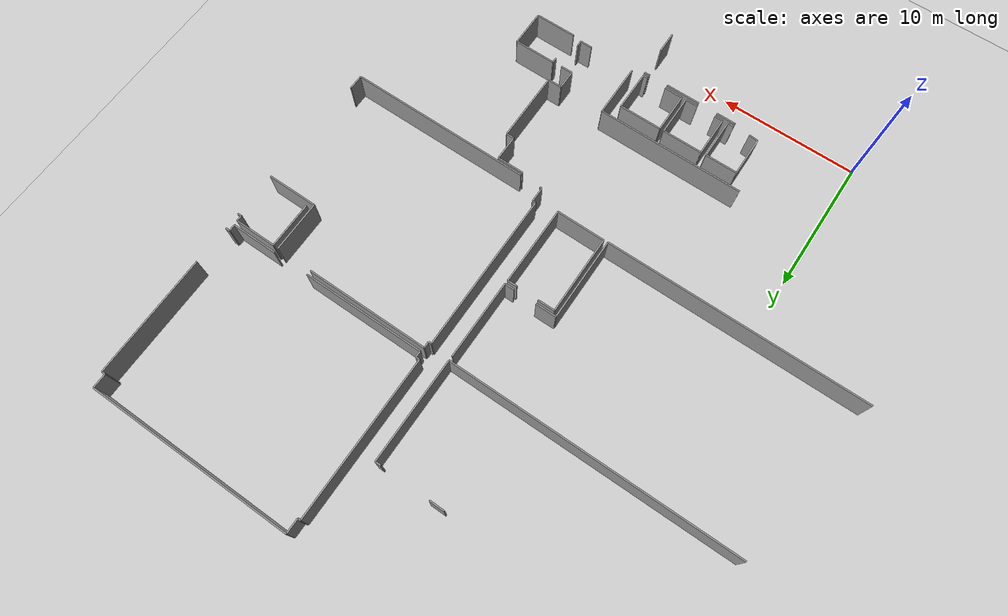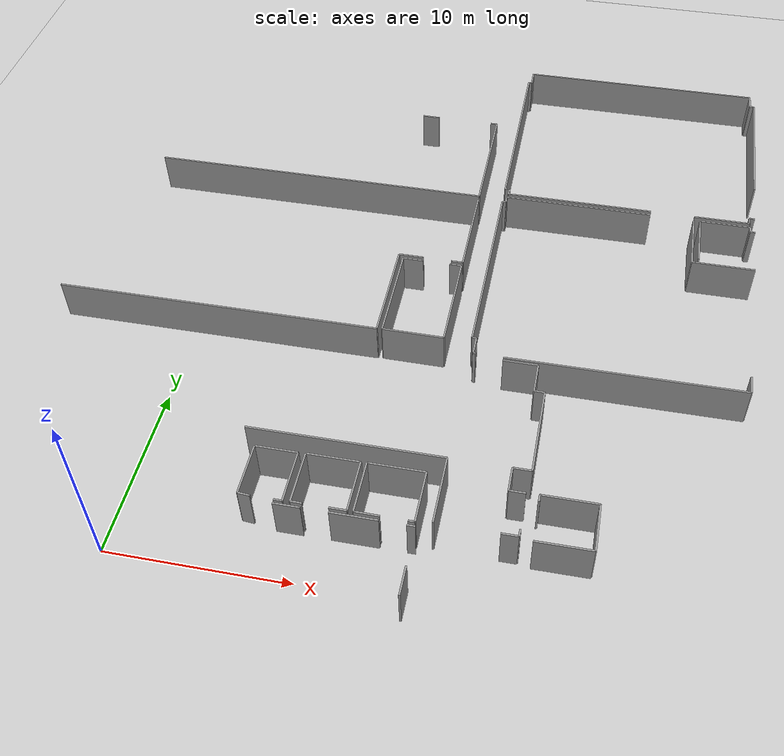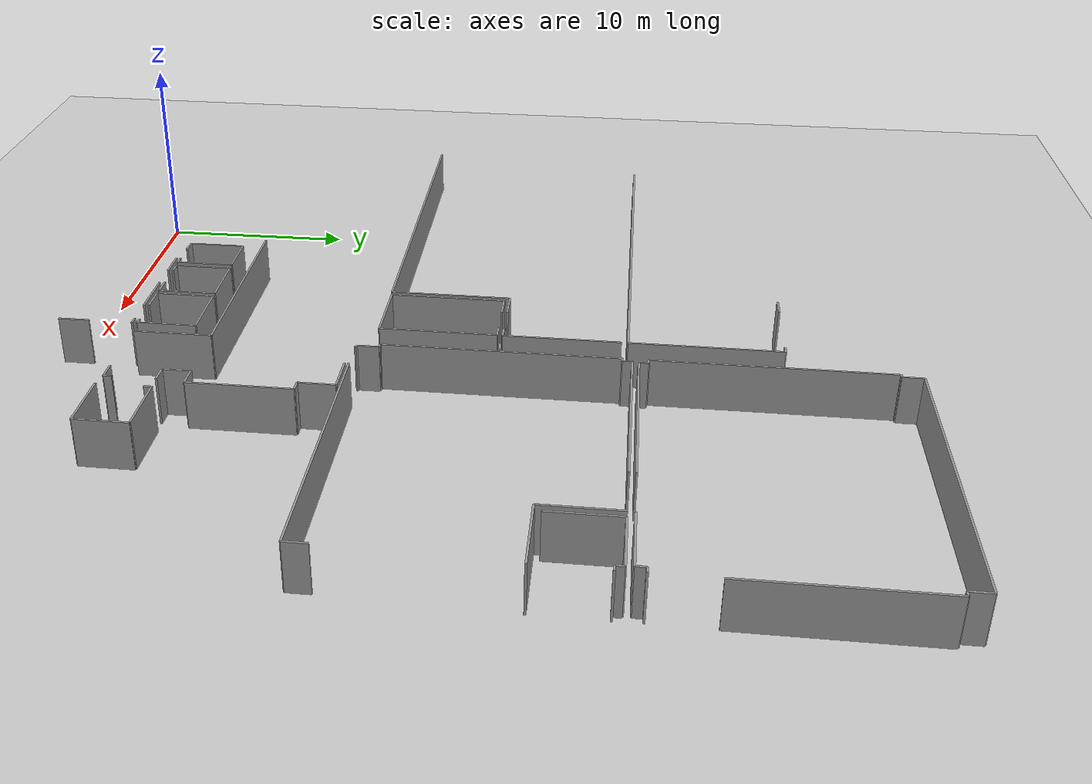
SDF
<sdf version="1.6">
 <world name="default">
  <model name="ground_plane">
   <static>1</static>
   <link name="link">
    <collision name="collision">
     <geometry><plane><normal>0 0 1</normal><size>100 100</size></plane></geometry>
     <surface><friction><ode><mu>100</mu><mu2>50</mu2></ode></friction></surface>
    </collision>
    <visual name="visual">
     <cast_shadows>0</cast_shadows>
     <geometry><plane><normal>0 0 1</normal><size>100 100</size></plane></geometry>
     <material>
      <script><uri>file://media/materials/scripts/gazebo.material</uri><name>Gazebo/Grey</name></script>
     </material>
    </visual>
   </link>
  </model>
  <model name="0510035740_A_40_1_103">
   <static>1</static>
   <link name="Wall_208">
    <collision name="Wall_208_Collision">
     <geometry><box><size>1.09718723628 0.1 2.5</size></box></geometry>
     <pose>0.548593618142 0 1.25 0 0 0</pose>
    </collision>
    <visual name="Wall_208_Visual">
     <pose>0.548593618142 0 1.25 0 0 0</pose>
     <geometry><box><size>1.09718723628 0.1 2.5</size></box></geometry>
     <material>
      <script><uri>file://media/materials/scripts/gazebo.material</uri><name>Gazebo/Grey</name></script>
      <ambient>1 1 1 1</ambient>
     </material>
    </visual>
    <pose>103.631276054 -14.8613922324 0 0 0 0.0</pose>
   </link>
   <link name="Wall_209">
    <collision name="Wall_209_Collision">
     <geometry><box><size>0.410398279221 0.1 2.5</size></box></geometry>
     <pose>0.20519913961 0 1.25 0 0 0</pose>
    </collision>
    <visual name="Wall_209_Visual">
     <pose>0.20519913961 0 1.25 0 0 0</pose>
     <geometry><box><size>0.410398279221 0.1 2.5</size></box></geometry>
     <material>
      <script><uri>file://media/materials/scripts/gazebo.material</uri><name>Gazebo/Grey</name></script>
      <ambient>1 1 1 1</ambient>
     </material>
    </visual>
    <pose>108.268243625 -14.8613922324 0 0 0 0.0</pose>
   </link>
   <link name="Wall_210">
    <collision name="Wall_210_Collision">
     <geometry><box><size>7.49630400437 0.1 2.5</size></box></geometry>
     <pose>3.74815200218 0 1.25 0 0 0</pose>
    </collision>
    <visual name="Wall_210_Visual">
     <pose>3.74815200218 0 1.25 0 0 0</pose>
     <geometry><box><size>7.49630400437 0.1 2.5</size></box></geometry>
     <material>
      <script><uri>file://media/materials/scripts/gazebo.material</uri><name>Gazebo/Grey</name></script>
      <ambient>1 1 1 1</ambient>
     </material>
    </visual>
    <pose>108.678641904 -14.8613922324 0 0 0 -1.57079632679</pose>
   </link>
   <link name="Wall_211">
    <collision name="Wall_211_Collision">
     <geometry><box><size>20.8666078691 0.1 2.5</size></box></geometry>
     <pose>10.4333039346 0 1.25 0 0 0</pose>
    </collision>
    <visual name="Wall_211_Visual">
     <pose>10.4333039346 0 1.25 0 0 0</pose>
     <geometry><box><size>20.8666078691 0.1 2.5</size></box></geometry>
     <material>
      <script><uri>file://media/materials/scripts/gazebo.material</uri><name>Gazebo/Grey</name></script>
      <ambient>1 1 1 1</ambient>
     </material>
    </visual>
    <pose>108.678641904 -22.3576962367 0 0 0 3.14159265359</pose>
   </link>
   <link name="Wall_218">
    <collision name="Wall_218_Collision">
     <geometry><box><size>5.78186963446 0.1 2.5</size></box></geometry>
     <pose>2.89093481723 0 1.25 0 0 0</pose>
    </collision>
    <visual name="Wall_218_Visual">
     <pose>2.89093481723 0 1.25 0 0 0</pose>
     <geometry><box><size>5.78186963446 0.1 2.5</size></box></geometry>
     <material>
      <script><uri>file://media/materials/scripts/gazebo.material</uri><name>Gazebo/Grey</name></script>
      <ambient>1 1 1 1</ambient>
     </material>
    </visual>
    <pose>108.668236011 -22.6739338718 0 0 0 -1.57079632679</pose>
   </link>
   <link name="Wall_219">
    <collision name="Wall_219_Collision">
     <geometry><box><size>0.704555116337 0.1 2.5</size></box></geometry>
     <pose>0.352277558168 0 1.25 0 0 0</pose>
    </collision>
    <visual name="Wall_219_Visual">
     <pose>0.352277558168 0 1.25 0 0 0</pose>
     <geometry><box><size>0.704555116337 0.1 2.5</size></box></geometry>
     <material>
      <script><uri>file://media/materials/scripts/gazebo.material</uri><name>Gazebo/Grey</name></script>
      <ambient>1 1 1 1</ambient>
     </material>
    </visual>
    <pose>108.668236011 -28.4558035063 0 0 0 3.14159265359</pose>
   </link>
   <link name="Wall_220">
    <collision name="Wall_220_Collision">
     <geometry><box><size>1.5014942609 0.1 2.5</size></box></geometry>
     <pose>0.750747130448 0 1.25 0 0 0</pose>
    </collision>
    <visual name="Wall_220_Visual">
     <pose>0.750747130448 0 1.25 0 0 0</pose>
     <geometry><box><size>1.5014942609 0.1 2.5</size></box></geometry>
     <material>
      <script><uri>file://media/materials/scripts/gazebo.material</uri><name>Gazebo/Grey</name></script>
      <ambient>1 1 1 1</ambient>
     </material>
    </visual>
    <pose>106.297976561 -28.4558035063 0 0 0 3.14159265359</pose>
   </link>
   <link name="Wall_221">
    <collision name="Wall_221_Collision">
     <geometry><box><size>6.11866525383 0.1 2.5</size></box></geometry>
     <pose>3.05933262692 0 1.25 0 0 0</pose>
    </collision>
    <visual name="Wall_221_Visual">
     <pose>3.05933262692 0 1.25 0 0 0</pose>
     <geometry><box><size>6.11866525383 0.1 2.5</size></box></geometry>
     <material>
      <script><uri>file://media/materials/scripts/gazebo.material</uri><name>Gazebo/Grey</name></script>
      <ambient>1 1 1 1</ambient>
     </material>
    </visual>
    <pose>104.7964823 -28.4558035063 0 0 0 -1.57079632679</pose>
   </link>
   <link name="Wall_222">
    <collision name="Wall_222_Collision">
     <geometry><box><size>18.9047166641 0.1 2.5</size></box></geometry>
     <pose>9.45235833206 0 1.25 0 0 0</pose>
    </collision>
    <visual name="Wall_222_Visual">
     <pose>9.45235833206 0 1.25 0 0 0</pose>
     <geometry><box><size>18.9047166641 0.1 2.5</size></box></geometry>
     <material>
      <script><uri>file://media/materials/scripts/gazebo.material</uri><name>Gazebo/Grey</name></script>
      <ambient>1 1 1 1</ambient>
     </material>
    </visual>
    <pose>104.7964823 -34.5744687601 0 0 0 -3.14139127347</pose>
   </link>
   <link name="Wall_223">
    <collision name="Wall_223_Collision">
     <geometry><box><size>5.80750366427 0.1 2.5</size></box></geometry>
     <pose>2.90375183214 0 1.25 0 0 0</pose>
    </collision>
    <visual name="Wall_223_Visual">
     <pose>2.90375183214 0 1.25 0 0 0</pose>
     <geometry><box><size>5.80750366427 0.1 2.5</size></box></geometry>
     <material>
      <script><uri>file://media/materials/scripts/gazebo.material</uri><name>Gazebo/Grey</name></script>
      <ambient>1 1 1 1</ambient>
     </material>
    </visual>
    <pose>105.096984194 -34.5399516507 0 0 0 1.57079632679</pose>
   </link>
   <link name="Wall_224">
    <collision name="Wall_224_Collision">
     <geometry><box><size>1.23500187179 0.1 2.5</size></box></geometry>
     <pose>0.617500935896 0 1.25 0 0 0</pose>
    </collision>
    <visual name="Wall_224_Visual">
     <pose>0.617500935896 0 1.25 0 0 0</pose>
     <geometry><box><size>1.23500187179 0.1 2.5</size></box></geometry>
     <material>
      <script><uri>file://media/materials/scripts/gazebo.material</uri><name>Gazebo/Grey</name></script>
      <ambient>1 1 1 1</ambient>
     </material>
    </visual>
    <pose>105.096984194 -28.7324479864 0 0 0 0.0</pose>
   </link>
   <link name="Wall_225">
    <collision name="Wall_225_Collision">
     <geometry><box><size>0.711153975495 0.1 2.5</size></box></geometry>
     <pose>0.355576987748 0 1.25 0 0 0</pose>
    </collision>
    <visual name="Wall_225_Visual">
     <pose>0.355576987748 0 1.25 0 0 0</pose>
     <geometry><box><size>0.711153975495 0.1 2.5</size></box></geometry>
     <material>
      <script><uri>file://media/materials/scripts/gazebo.material</uri><name>Gazebo/Grey</name></script>
      <ambient>1 1 1 1</ambient>
     </material>
    </visual>
    <pose>107.92967139 -28.7324479864 0 0 0 0.0</pose>
   </link>
   <link name="Wall_226">
    <collision name="Wall_226_Collision">
     <geometry><box><size>5.82653883492 0.1 2.5</size></box></geometry>
     <pose>2.91326941746 0 1.25 0 0 0</pose>
    </collision>
    <visual name="Wall_226_Visual">
     <pose>2.91326941746 0 1.25 0 0 0</pose>
     <geometry><box><size>5.82653883492 0.1 2.5</size></box></geometry>
     <material>
      <script><uri>file://media/materials/scripts/gazebo.material</uri><name>Gazebo/Grey</name></script>
      <ambient>1 1 1 1</ambient>
     </material>
    </visual>
    <pose>108.640825365 -28.7324479864 0 0 0 -1.57079632679</pose>
   </link>
   <link name="Wall_227">
    <collision name="Wall_227_Collision">
     <geometry><box><size>3.54389229234 0.1 2.5</size></box></geometry>
     <pose>1.77194614617 0 1.25 0 0 0</pose>
    </collision>
    <visual name="Wall_227_Visual">
     <pose>1.77194614617 0 1.25 0 0 0</pose>
     <geometry><box><size>3.54389229234 0.1 2.5</size></box></geometry>
     <material>
      <script><uri>file://media/materials/scripts/gazebo.material</uri><name>Gazebo/Grey</name></script>
      <ambient>1 1 1 1</ambient>
     </material>
    </visual>
    <pose>108.640825365 -34.5589868213 0 0 0 3.13622136671</pose>
   </link>
   <link name="Wall_229">
    <collision name="Wall_229_Collision">
     <geometry><box><size>1.96417580884 0.1 2.5</size></box></geometry>
     <pose>0.982087904418 0 1.25 0 0 0</pose>
    </collision>
    <visual name="Wall_229_Visual">
     <pose>0.982087904418 0 1.25 0 0 0</pose>
     <geometry><box><size>1.96417580884 0.1 2.5</size></box></geometry>
     <material>
      <script><uri>file://media/materials/scripts/gazebo.material</uri><name>Gazebo/Grey</name></script>
      <ambient>1 1 1 1</ambient>
     </material>
    </visual>
    <pose>112.120708362 -35.5955153138 0 0 0 0.0</pose>
   </link>
   <link name="Wall_230">
    <collision name="Wall_230_Collision">
     <geometry><box><size>1.83143721883 0.1 2.5</size></box></geometry>
     <pose>0.915718609417 0 1.25 0 0 0</pose>
    </collision>
    <visual name="Wall_230_Visual">
     <pose>0.915718609417 0 1.25 0 0 0</pose>
     <geometry><box><size>1.83143721883 0.1 2.5</size></box></geometry>
     <material>
      <script><uri>file://media/materials/scripts/gazebo.material</uri><name>Gazebo/Grey</name></script>
      <ambient>1 1 1 1</ambient>
     </material>
    </visual>
    <pose>114.084884171 -35.5955153138 0 0 0 -1.57079632679</pose>
   </link>
   <link name="Wall_231">
    <collision name="Wall_231_Collision">
     <geometry><box><size>0.574354549089 0.1 2.5</size></box></geometry>
     <pose>0.287177274544 0 1.25 0 0 0</pose>
    </collision>
    <visual name="Wall_231_Visual">
     <pose>0.287177274544 0 1.25 0 0 0</pose>
     <geometry><box><size>0.574354549089 0.1 2.5</size></box></geometry>
     <material>
      <script><uri>file://media/materials/scripts/gazebo.material</uri><name>Gazebo/Grey</name></script>
      <ambient>1 1 1 1</ambient>
     </material>
    </visual>
    <pose>114.084884171 -37.4269525326 0 0 0 0.0</pose>
   </link>
   <link name="Wall_232">
    <collision name="Wall_232_Collision">
     <geometry><box><size>5.15396280528 0.1 2.5</size></box></geometry>
     <pose>2.57698140264 0 1.25 0 0 0</pose>
    </collision>
    <visual name="Wall_232_Visual">
     <pose>2.57698140264 0 1.25 0 0 0</pose>
     <geometry><box><size>5.15396280528 0.1 2.5</size></box></geometry>
     <material>
      <script><uri>file://media/materials/scripts/gazebo.material</uri><name>Gazebo/Grey</name></script>
      <ambient>1 1 1 1</ambient>
     </material>
    </visual>
    <pose>114.65923872 -37.4269525326 0 0 0 -1.57079632679</pose>
   </link>
   <link name="Wall_233">
    <collision name="Wall_233_Collision">
     <geometry><box><size>1.01723951955 0.1 2.5</size></box></geometry>
     <pose>0.508619759776 0 1.25 0 0 0</pose>
    </collision>
    <visual name="Wall_233_Visual">
     <pose>0.508619759776 0 1.25 0 0 0</pose>
     <geometry><box><size>1.01723951955 0.1 2.5</size></box></geometry>
     <material>
      <script><uri>file://media/materials/scripts/gazebo.material</uri><name>Gazebo/Grey</name></script>
      <ambient>1 1 1 1</ambient>
     </material>
    </visual>
    <pose>114.65923872 -42.5809153379 0 0 0 3.14159265359</pose>
   </link>
   <link name="Wall_234">
    <collision name="Wall_234_Collision">
     <geometry><box><size>1.3913440734 0.1 2.5</size></box></geometry>
     <pose>0.6956720367 0 1.25 0 0 0</pose>
    </collision>
    <visual name="Wall_234_Visual">
     <pose>0.6956720367 0 1.25 0 0 0</pose>
     <geometry><box><size>1.3913440734 0.1 2.5</size></box></geometry>
     <material>
      <script><uri>file://media/materials/scripts/gazebo.material</uri><name>Gazebo/Grey</name></script>
      <ambient>1 1 1 1</ambient>
     </material>
    </visual>
    <pose>113.641999201 -42.5809153379 0 0 0 -1.57079632679</pose>
   </link>
   <link name="Wall_235">
    <collision name="Wall_235_Collision">
     <geometry><box><size>0.875871652189 0.1 2.5</size></box></geometry>
     <pose>0.437935826095 0 1.25 0 0 0</pose>
    </collision>
    <visual name="Wall_235_Visual">
     <pose>0.437935826095 0 1.25 0 0 0</pose>
     <geometry><box><size>0.875871652189 0.1 2.5</size></box></geometry>
     <material>
      <script><uri>file://media/materials/scripts/gazebo.material</uri><name>Gazebo/Grey</name></script>
      <ambient>1 1 1 1</ambient>
     </material>
    </visual>
    <pose>113.641999201 -43.9722594113 0 0 0 0.0</pose>
   </link>
   <link name="Wall_236">
    <collision name="Wall_236_Collision">
     <geometry><box><size>0.396946758628 0.1 2.5</size></box></geometry>
     <pose>0.198473379314 0 1.25 0 0 0</pose>
    </collision>
    <visual name="Wall_236_Visual">
     <pose>0.198473379314 0 1.25 0 0 0</pose>
     <geometry><box><size>0.396946758628 0.1 2.5</size></box></geometry>
     <material>
      <script><uri>file://media/materials/scripts/gazebo.material</uri><name>Gazebo/Grey</name></script>
      <ambient>1 1 1 1</ambient>
     </material>
    </visual>
    <pose>114.517870853 -46.0899855967 0 0 0 -1.57079632679</pose>
   </link>
   <link name="Wall_237">
    <collision name="Wall_237_Collision">
     <geometry><box><size>0.89871385697 0.1 2.5</size></box></geometry>
     <pose>0.449356928485 0 1.25 0 0 0</pose>
    </collision>
    <visual name="Wall_237_Visual">
     <pose>0.449356928485 0 1.25 0 0 0</pose>
     <geometry><box><size>0.89871385697 0.1 2.5</size></box></geometry>
     <material>
      <script><uri>file://media/materials/scripts/gazebo.material</uri><name>Gazebo/Grey</name></script>
      <ambient>1 1 1 1</ambient>
     </material>
    </visual>
    <pose>114.517870853 -46.4869323553 0 0 0 3.14159265359</pose>
   </link>
   <link name="Wall_238">
    <collision name="Wall_238_Collision">
     <geometry><box><size>3.90119477421 0.1 2.5</size></box></geometry>
     <pose>1.95059738711 0 1.25 0 0 0</pose>
    </collision>
    <visual name="Wall_238_Visual">
     <pose>1.95059738711 0 1.25 0 0 0</pose>
     <geometry><box><size>3.90119477421 0.1 2.5</size></box></geometry>
     <material>
      <script><uri>file://media/materials/scripts/gazebo.material</uri><name>Gazebo/Grey</name></script>
      <ambient>1 1 1 1</ambient>
     </material>
    </visual>
    <pose>110.286986923 -46.4869323553 0 0 0 1.57079632679</pose>
   </link>
   <link name="Wall_239">
    <collision name="Wall_239_Collision">
     <geometry><box><size>10.7302525967 0.1 2.5</size></box></geometry>
     <pose>5.36512629836 0 1.25 0 0 0</pose>
    </collision>
    <visual name="Wall_239_Visual">
     <pose>5.36512629836 0 1.25 0 0 0</pose>
     <geometry><box><size>10.7302525967 0.1 2.5</size></box></geometry>
     <material>
      <script><uri>file://media/materials/scripts/gazebo.material</uri><name>Gazebo/Grey</name></script>
      <ambient>1 1 1 1</ambient>
     </material>
    </visual>
    <pose>110.286986923 -42.5857375811 0 0 0 3.14159265359</pose>
   </link>
   <link name="Wall_275">
    <collision name="Wall_275_Collision">
     <geometry><box><size>1.43931270344 0.1 2.5</size></box></geometry>
     <pose>0.719656351719 0 1.25 0 0 0</pose>
    </collision>
    <visual name="Wall_275_Visual">
     <pose>0.719656351719 0 1.25 0 0 0</pose>
     <geometry><box><size>1.43931270344 0.1 2.5</size></box></geometry>
     <material>
      <script><uri>file://media/materials/scripts/gazebo.material</uri><name>Gazebo/Grey</name></script>
      <ambient>1 1 1 1</ambient>
     </material>
    </visual>
    <pose>102.28104795 -46.8605293046 0 0 0 0.0</pose>
   </link>
   <link name="Wall_276">
    <collision name="Wall_276_Collision">
     <geometry><box><size>2.51974898955 0.1 2.5</size></box></geometry>
     <pose>1.25987449477 0 1.25 0 0 0</pose>
    </collision>
    <visual name="Wall_276_Visual">
     <pose>1.25987449477 0 1.25 0 0 0</pose>
     <geometry><box><size>2.51974898955 0.1 2.5</size></box></geometry>
     <material>
      <script><uri>file://media/materials/scripts/gazebo.material</uri><name>Gazebo/Grey</name></script>
      <ambient>1 1 1 1</ambient>
     </material>
    </visual>
    <pose>105.147237045 -46.8605293046 0 0 0 0.0</pose>
   </link>
   <link name="Wall_277">
    <collision name="Wall_277_Collision">
     <geometry><box><size>0.42892584532 0.1 2.5</size></box></geometry>
     <pose>0.21446292266 0 1.25 0 0 0</pose>
    </collision>
    <visual name="Wall_277_Visual">
     <pose>0.21446292266 0 1.25 0 0 0</pose>
     <geometry><box><size>0.42892584532 0.1 2.5</size></box></geometry>
     <material>
      <script><uri>file://media/materials/scripts/gazebo.material</uri><name>Gazebo/Grey</name></script>
      <ambient>1 1 1 1</ambient>
     </material>
    </visual>
    <pose>109.061629538 -46.8605293046 0 0 0 0.0</pose>
   </link>
   <link name="Wall_278">
    <collision name="Wall_278_Collision">
     <geometry><box><size>1.56722905021 0.1 2.5</size></box></geometry>
     <pose>0.783614525104 0 1.25 0 0 0</pose>
    </collision>
    <visual name="Wall_278_Visual">
     <pose>0.783614525104 0 1.25 0 0 0</pose>
     <geometry><box><size>1.56722905021 0.1 2.5</size></box></geometry>
     <material>
      <script><uri>file://media/materials/scripts/gazebo.material</uri><name>Gazebo/Grey</name></script>
      <ambient>1 1 1 1</ambient>
     </material>
    </visual>
    <pose>109.490555383 -49.0655634728 0 0 0 -1.57079632679</pose>
   </link>
   <link name="Wall_280">
    <collision name="Wall_280_Collision">
     <geometry><box><size>2.91212730722 0.1 2.5</size></box></geometry>
     <pose>1.45606365361 0 1.25 0 0 0</pose>
    </collision>
    <visual name="Wall_280_Visual">
     <pose>1.45606365361 0 1.25 0 0 0</pose>
     <geometry><box><size>2.91212730722 0.1 2.5</size></box></geometry>
     <material>
      <script><uri>file://media/materials/scripts/gazebo.material</uri><name>Gazebo/Grey</name></script>
      <ambient>1 1 1 1</ambient>
     </material>
    </visual>
    <pose>100.40824096 -46.5866766496 0 0 0 1.57079632679</pose>
   </link>
   <link name="Wall_281">
    <collision name="Wall_281_Collision">
     <geometry><box><size>2.32330602844 0.1 2.5</size></box></geometry>
     <pose>1.16165301422 0 1.25 0 0 0</pose>
    </collision>
    <visual name="Wall_281_Visual">
     <pose>1.16165301422 0 1.25 0 0 0</pose>
     <geometry><box><size>2.32330602844 0.1 2.5</size></box></geometry>
     <material>
      <script><uri>file://media/materials/scripts/gazebo.material</uri><name>Gazebo/Grey</name></script>
      <ambient>1 1 1 1</ambient>
     </material>
    </visual>
    <pose>100.40824096 -43.6745493423 0 0 0 0.0</pose>
   </link>
   <link name="Wall_282">
    <collision name="Wall_282_Collision">
     <geometry><box><size>2.96466437822 0.1 2.5</size></box></geometry>
     <pose>1.48233218911 0 1.25 0 0 0</pose>
    </collision>
    <visual name="Wall_282_Visual">
     <pose>1.48233218911 0 1.25 0 0 0</pose>
     <geometry><box><size>2.96466437822 0.1 2.5</size></box></geometry>
     <material>
      <script><uri>file://media/materials/scripts/gazebo.material</uri><name>Gazebo/Grey</name></script>
      <ambient>1 1 1 1</ambient>
     </material>
    </visual>
    <pose>102.731546988 -43.6745493423 0 0 0 -1.57079632679</pose>
   </link>
   <link name="Wall_283">
    <collision name="Wall_283_Collision">
     <geometry><box><size>0.458620711535 0.1 2.5</size></box></geometry>
     <pose>0.229310355767 0 1.25 0 0 0</pose>
    </collision>
    <visual name="Wall_283_Visual">
     <pose>0.229310355767 0 1.25 0 0 0</pose>
     <geometry><box><size>0.458620711535 0.1 2.5</size></box></geometry>
     <material>
      <script><uri>file://media/materials/scripts/gazebo.material</uri><name>Gazebo/Grey</name></script>
      <ambient>1 1 1 1</ambient>
     </material>
    </visual>
    <pose>102.731546988 -46.6392137206 0 0 0 3.14159265359</pose>
   </link>
   <link name="Wall_284">
    <collision name="Wall_284_Collision">
     <geometry><box><size>0.666022097002 0.1 2.5</size></box></geometry>
     <pose>0.333011048501 0 1.25 0 0 0</pose>
    </collision>
    <visual name="Wall_284_Visual">
     <pose>0.333011048501 0 1.25 0 0 0</pose>
     <geometry><box><size>0.666022097002 0.1 2.5</size></box></geometry>
     <material>
      <script><uri>file://media/materials/scripts/gazebo.material</uri><name>Gazebo/Grey</name></script>
      <ambient>1 1 1 1</ambient>
     </material>
    </visual>
    <pose>101.072187712 -46.6392137206 0 0 0 3.06262874479</pose>
   </link>
   <link name="Wall_285">
    <collision name="Wall_285_Collision">
     <geometry><box><size>2.93649232565 0.1 2.5</size></box></geometry>
     <pose>1.46824616283 0 1.25 0 0 0</pose>
    </collision>
    <visual name="Wall_285_Visual">
     <pose>1.46824616283 0 1.25 0 0 0</pose>
     <geometry><box><size>2.93649232565 0.1 2.5</size></box></geometry>
     <material>
      <script><uri>file://media/materials/scripts/gazebo.material</uri><name>Gazebo/Grey</name></script>
      <ambient>1 1 1 1</ambient>
     </material>
    </visual>
    <pose>103.121894888 -46.5879456609 0 0 0 1.57079632679</pose>
   </link>
   <link name="Wall_286">
    <collision name="Wall_286_Collision">
     <geometry><box><size>2.8928383343 0.1 2.5</size></box></geometry>
     <pose>1.44641916715 0 1.25 0 0 0</pose>
    </collision>
    <visual name="Wall_286_Visual">
     <pose>1.44641916715 0 1.25 0 0 0</pose>
     <geometry><box><size>2.8928383343 0.1 2.5</size></box></geometry>
     <material>
      <script><uri>file://media/materials/scripts/gazebo.material</uri><name>Gazebo/Grey</name></script>
      <ambient>1 1 1 1</ambient>
     </material>
    </visual>
    <pose>103.121894888 -43.6514533353 0 0 0 0.0</pose>
   </link>
   <link name="Wall_287">
    <collision name="Wall_287_Collision">
     <geometry><box><size>2.94969004397 0.1 2.5</size></box></geometry>
     <pose>1.47484502199 0 1.25 0 0 0</pose>
    </collision>
    <visual name="Wall_287_Visual">
     <pose>1.47484502199 0 1.25 0 0 0</pose>
     <geometry><box><size>2.94969004397 0.1 2.5</size></box></geometry>
     <material>
      <script><uri>file://media/materials/scripts/gazebo.material</uri><name>Gazebo/Grey</name></script>
      <ambient>1 1 1 1</ambient>
     </material>
    </visual>
    <pose>106.014733222 -43.6514533353 0 0 0 -1.57079632679</pose>
   </link>
   <link name="Wall_288">
    <collision name="Wall_288_Collision">
     <geometry><box><size>0.923586479953 0.1 2.5</size></box></geometry>
     <pose>0.461793239976 0 1.25 0 0 0</pose>
    </collision>
    <visual name="Wall_288_Visual">
     <pose>0.461793239976 0 1.25 0 0 0</pose>
     <geometry><box><size>0.923586479953 0.1 2.5</size></box></geometry>
     <material>
      <script><uri>file://media/materials/scripts/gazebo.material</uri><name>Gazebo/Grey</name></script>
      <ambient>1 1 1 1</ambient>
     </material>
    </visual>
    <pose>106.014733222 -46.6011433793 0 0 0 3.14159265359</pose>
   </link>
   <link name="Wall_289">
    <collision name="Wall_289_Collision">
     <geometry><box><size>0.60495480024 0.1 2.5</size></box></geometry>
     <pose>0.30247740012 0 1.25 0 0 0</pose>
    </collision>
    <visual name="Wall_289_Visual">
     <pose>0.30247740012 0 1.25 0 0 0</pose>
     <geometry><box><size>0.60495480024 0.1 2.5</size></box></geometry>
     <material>
      <script><uri>file://media/materials/scripts/gazebo.material</uri><name>Gazebo/Grey</name></script>
      <ambient>1 1 1 1</ambient>
     </material>
    </visual>
    <pose>103.72670571 -46.6011433793 0 0 0 3.11977488237</pose>
   </link>
   <link name="Wall_290">
    <collision name="Wall_290_Collision">
     <geometry><box><size>2.9514666599 0.1 2.5</size></box></geometry>
     <pose>1.47573332995 0 1.25 0 0 0</pose>
    </collision>
    <visual name="Wall_290_Visual">
     <pose>1.47573332995 0 1.25 0 0 0</pose>
     <geometry><box><size>2.9514666599 0.1 2.5</size></box></geometry>
     <material>
      <script><uri>file://media/materials/scripts/gazebo.material</uri><name>Gazebo/Grey</name></script>
      <ambient>1 1 1 1</ambient>
     </material>
    </visual>
    <pose>106.327163823 -46.5940369155 0 0 0 1.57079632679</pose>
   </link>
   <link name="Wall_291">
    <collision name="Wall_291_Collision">
     <geometry><box><size>3.09435734091 0.1 2.5</size></box></geometry>
     <pose>1.54717867046 0 1.25 0 0 0</pose>
    </collision>
    <visual name="Wall_291_Visual">
     <pose>1.54717867046 0 1.25 0 0 0</pose>
     <geometry><box><size>3.09435734091 0.1 2.5</size></box></geometry>
     <material>
      <script><uri>file://media/materials/scripts/gazebo.material</uri><name>Gazebo/Grey</name></script>
      <ambient>1 1 1 1</ambient>
     </material>
    </visual>
    <pose>106.327163823 -43.6425702556 0 0 0 0.0</pose>
   </link>
   <link name="Wall_292">
    <collision name="Wall_292_Collision">
     <geometry><box><size>2.96694859869 0.1 2.5</size></box></geometry>
     <pose>1.48347429935 0 1.25 0 0 0</pose>
    </collision>
    <visual name="Wall_292_Visual">
     <pose>1.48347429935 0 1.25 0 0 0</pose>
     <geometry><box><size>2.96694859869 0.1 2.5</size></box></geometry>
     <material>
      <script><uri>file://media/materials/scripts/gazebo.material</uri><name>Gazebo/Grey</name></script>
      <ambient>1 1 1 1</ambient>
     </material>
    </visual>
    <pose>109.421521164 -43.6425702556 0 0 0 -1.57079632679</pose>
   </link>
   <link name="Wall_293">
    <collision name="Wall_293_Collision">
     <geometry><box><size>0.347709117212 0.1 2.5</size></box></geometry>
     <pose>0.173854558606 0 1.25 0 0 0</pose>
    </collision>
    <visual name="Wall_293_Visual">
     <pose>0.173854558606 0 1.25 0 0 0</pose>
     <geometry><box><size>0.347709117212 0.1 2.5</size></box></geometry>
     <material>
      <script><uri>file://media/materials/scripts/gazebo.material</uri><name>Gazebo/Grey</name></script>
      <ambient>1 1 1 1</ambient>
     </material>
    </visual>
    <pose>109.421521164 -46.6095188543 0 0 0 3.14159265359</pose>
   </link>
   <link name="Wall_294">
    <collision name="Wall_294_Collision">
     <geometry><box><size>1.34016544245 0.1 2.5</size></box></geometry>
     <pose>0.670082721226 0 1.25 0 0 0</pose>
    </collision>
    <visual name="Wall_294_Visual">
     <pose>0.670082721226 0 1.25 0 0 0</pose>
     <geometry><box><size>1.34016544245 0.1 2.5</size></box></geometry>
     <material>
      <script><uri>file://media/materials/scripts/gazebo.material</uri><name>Gazebo/Grey</name></script>
      <ambient>1 1 1 1</ambient>
     </material>
    </visual>
    <pose>107.667239837 -46.6095188543 0 0 0 3.13004013725</pose>
   </link>
   <link name="Wall_383">
    <collision name="Wall_383_Collision">
     <geometry><box><size>0.391870713121 0.1 2.5</size></box></geometry>
     <pose>0.19593535656 0 1.25 0 0 0</pose>
    </collision>
    <visual name="Wall_383_Visual">
     <pose>0.19593535656 0 1.25 0 0 0</pose>
     <geometry><box><size>0.391870713121 0.1 2.5</size></box></geometry>
     <material>
      <script><uri>file://media/materials/scripts/gazebo.material</uri><name>Gazebo/Grey</name></script>
      <ambient>1 1 1 1</ambient>
     </material>
    </visual>
    <pose>115.204913612 -44.3349428628 0 0 0 1.57079632679</pose>
   </link>
   <link name="Wall_384">
    <collision name="Wall_384_Collision">
     <geometry><box><size>3.01314061281 0.1 2.5</size></box></geometry>
     <pose>1.5065703064 0 1.25 0 0 0</pose>
    </collision>
    <visual name="Wall_384_Visual">
     <pose>1.5065703064 0 1.25 0 0 0</pose>
     <geometry><box><size>3.01314061281 0.1 2.5</size></box></geometry>
     <material>
      <script><uri>file://media/materials/scripts/gazebo.material</uri><name>Gazebo/Grey</name></script>
      <ambient>1 1 1 1</ambient>
     </material>
    </visual>
    <pose>115.204913612 -43.9430721496 0 0 0 0.0</pose>
   </link>
   <link name="Wall_385">
    <collision name="Wall_385_Collision">
     <geometry><box><size>2.67025373882 0.1 2.5</size></box></geometry>
     <pose>1.33512686941 0 1.25 0 0 0</pose>
    </collision>
    <visual name="Wall_385_Visual">
     <pose>1.33512686941 0 1.25 0 0 0</pose>
     <geometry><box><size>2.67025373882 0.1 2.5</size></box></geometry>
     <material>
      <script><uri>file://media/materials/scripts/gazebo.material</uri><name>Gazebo/Grey</name></script>
      <ambient>1 1 1 1</ambient>
     </material>
    </visual>
    <pose>118.218054225 -43.9430721496 0 0 0 -1.57079632679</pose>
   </link>
   <link name="Wall_386">
    <collision name="Wall_386_Collision">
     <geometry><box><size>3.01314899306 0.1 2.5</size></box></geometry>
     <pose>1.50657449653 0 1.25 0 0 0</pose>
    </collision>
    <visual name="Wall_386_Visual">
     <pose>1.50657449653 0 1.25 0 0 0</pose>
     <geometry><box><size>3.01314899306 0.1 2.5</size></box></geometry>
     <material>
      <script><uri>file://media/materials/scripts/gazebo.material</uri><name>Gazebo/Grey</name></script>
      <ambient>1 1 1 1</ambient>
     </material>
    </visual>
    <pose>118.218054225 -46.6133258885 0 0 0 -3.1392341674</pose>
   </link>
   <link name="Wall_387">
    <collision name="Wall_387_Collision">
     <geometry><box><size>1.07637544971 0.1 2.5</size></box></geometry>
     <pose>0.538187724853 0 1.25 0 0 0</pose>
    </collision>
    <visual name="Wall_387_Visual">
     <pose>0.538187724853 0 1.25 0 0 0</pose>
     <geometry><box><size>1.07637544971 0.1 2.5</size></box></geometry>
     <material>
      <script><uri>file://media/materials/scripts/gazebo.material</uri><name>Gazebo/Grey</name></script>
      <ambient>1 1 1 1</ambient>
     </material>
    </visual>
    <pose>110.43723787 -35.3242006815 0 0 0 1.57079632679</pose>
   </link>
   <link name="Wall_388">
    <collision name="Wall_388_Collision">
     <geometry><box><size>0.240096952469 0.1 2.5</size></box></geometry>
     <pose>0.120048476235 0 1.25 0 0 0</pose>
    </collision>
    <visual name="Wall_388_Visual">
     <pose>0.120048476235 0 1.25 0 0 0</pose>
     <geometry><box><size>0.240096952469 0.1 2.5</size></box></geometry>
     <material>
      <script><uri>file://media/materials/scripts/gazebo.material</uri><name>Gazebo/Grey</name></script>
      <ambient>1 1 1 1</ambient>
     </material>
    </visual>
    <pose>110.43723787 -34.2478252318 0 0 0 3.14159265359</pose>
   </link>
   <link name="Wall_389">
    <collision name="Wall_389_Collision">
     <geometry><box><size>11.6507934494 0.1 2.5</size></box></geometry>
     <pose>5.82539672468 0 1.25 0 0 0</pose>
    </collision>
    <visual name="Wall_389_Visual">
     <pose>5.82539672468 0 1.25 0 0 0</pose>
     <geometry><box><size>11.6507934494 0.1 2.5</size></box></geometry>
     <material>
      <script><uri>file://media/materials/scripts/gazebo.material</uri><name>Gazebo/Grey</name></script>
      <ambient>1 1 1 1</ambient>
     </material>
    </visual>
    <pose>110.197140917 -34.2478252318 0 0 0 1.57079632679</pose>
   </link>
   <link name="Wall_390">
    <collision name="Wall_390_Collision">
     <geometry><box><size>0.213955318109 0.1 2.5</size></box></geometry>
     <pose>0.106977659055 0 1.25 0 0 0</pose>
    </collision>
    <visual name="Wall_390_Visual">
     <pose>0.106977659055 0 1.25 0 0 0</pose>
     <geometry><box><size>0.213955318109 0.1 2.5</size></box></geometry>
     <material>
      <script><uri>file://media/materials/scripts/gazebo.material</uri><name>Gazebo/Grey</name></script>
      <ambient>1 1 1 1</ambient>
     </material>
    </visual>
    <pose>110.197140917 -22.5970317824 0 0 0 0.0</pose>
   </link>
   <link name="Wall_391">
    <collision name="Wall_391_Collision">
     <geometry><box><size>0.464204361592 0.1 2.5</size></box></geometry>
     <pose>0.232102180796 0 1.25 0 0 0</pose>
    </collision>
    <visual name="Wall_391_Visual">
     <pose>0.232102180796 0 1.25 0 0 0</pose>
     <geometry><box><size>0.464204361592 0.1 2.5</size></box></geometry>
     <material>
      <script><uri>file://media/materials/scripts/gazebo.material</uri><name>Gazebo/Grey</name></script>
      <ambient>1 1 1 1</ambient>
     </material>
    </visual>
    <pose>110.411096235 -22.5970317824 0 0 0 1.57079632679</pose>
   </link>
   <link name="Wall_392">
    <collision name="Wall_392_Collision">
     <geometry><box><size>8.99703685844 0.1 2.5</size></box></geometry>
     <pose>4.49851842922 0 1.25 0 0 0</pose>
    </collision>
    <visual name="Wall_392_Visual">
     <pose>4.49851842922 0 1.25 0 0 0</pose>
     <geometry><box><size>8.99703685844 0.1 2.5</size></box></geometry>
     <material>
      <script><uri>file://media/materials/scripts/gazebo.material</uri><name>Gazebo/Grey</name></script>
      <ambient>1 1 1 1</ambient>
     </material>
    </visual>
    <pose>110.411096235 -22.1328274208 0 0 0 0.0</pose>
   </link>
   <link name="Wall_393">
    <collision name="Wall_393_Collision">
     <geometry><box><size>3.75195903631 0.1 2.5</size></box></geometry>
     <pose>1.87597951816 0 1.25 0 0 0</pose>
    </collision>
    <visual name="Wall_393_Visual">
     <pose>1.87597951816 0 1.25 0 0 0</pose>
     <geometry><box><size>3.75195903631 0.1 2.5</size></box></geometry>
     <material>
      <script><uri>file://media/materials/scripts/gazebo.material</uri><name>Gazebo/Grey</name></script>
      <ambient>1 1 1 1</ambient>
     </material>
    </visual>
    <pose>122.085239494 -22.1328274208 0 0 0 -1.57079632679</pose>
   </link>
   <link name="Wall_394">
    <collision name="Wall_394_Collision">
     <geometry><box><size>3.72404078603 0.1 2.5</size></box></geometry>
     <pose>1.86202039301 0 1.25 0 0 0</pose>
    </collision>
    <visual name="Wall_394_Visual">
     <pose>1.86202039301 0 1.25 0 0 0</pose>
     <geometry><box><size>3.72404078603 0.1 2.5</size></box></geometry>
     <material>
      <script><uri>file://media/materials/scripts/gazebo.material</uri><name>Gazebo/Grey</name></script>
      <ambient>1 1 1 1</ambient>
     </material>
    </visual>
    <pose>122.085239494 -25.8847864571 0 0 0 0.0</pose>
   </link>
   <link name="Wall_398">
    <collision name="Wall_398_Collision">
     <geometry><box><size>1.11799902286 0.1 2.5</size></box></geometry>
     <pose>0.558999511431 0 1.25 0 0 0</pose>
    </collision>
    <visual name="Wall_398_Visual">
     <pose>0.558999511431 0 1.25 0 0 0</pose>
     <geometry><box><size>1.11799902286 0.1 2.5</size></box></geometry>
     <material>
      <script><uri>file://media/materials/scripts/gazebo.material</uri><name>Gazebo/Grey</name></script>
      <ambient>1 1 1 1</ambient>
     </material>
    </visual>
    <pose>125.556493214 -34.272951657 0 0 0 -1.57079632679</pose>
   </link>
   <link name="Wall_399">
    <collision name="Wall_399_Collision">
     <geometry><box><size>13.4286783881 0.1 2.5</size></box></geometry>
     <pose>6.71433919405 0 1.25 0 0 0</pose>
    </collision>
    <visual name="Wall_399_Visual">
     <pose>6.71433919405 0 1.25 0 0 0</pose>
     <geometry><box><size>13.4286783881 0.1 2.5</size></box></geometry>
     <material>
      <script><uri>file://media/materials/scripts/gazebo.material</uri><name>Gazebo/Grey</name></script>
      <ambient>1 1 1 1</ambient>
     </material>
    </visual>
    <pose>125.556493214 -35.3909506799 0 0 0 3.14159265359</pose>
   </link>
   <link name="Wall_400">
    <collision name="Wall_400_Collision">
     <geometry><box><size>0.162325951239 0.1 2.5</size></box></geometry>
     <pose>0.0811629756197 0 1.25 0 0 0</pose>
    </collision>
    <visual name="Wall_400_Visual">
     <pose>0.0811629756197 0 1.25 0 0 0</pose>
     <geometry><box><size>0.162325951239 0.1 2.5</size></box></geometry>
     <material>
      <script><uri>file://media/materials/scripts/gazebo.material</uri><name>Gazebo/Grey</name></script>
      <ambient>1 1 1 1</ambient>
     </material>
    </visual>
    <pose>110.585204596 -35.3909506799 0 0 0 2.71781194366</pose>
   </link>
   <link name="Wall_401">
    <collision name="Wall_401_Collision">
     <geometry><box><size>0.454306072854 0.1 2.5</size></box></geometry>
     <pose>0.227153036427 0 1.25 0 0 0</pose>
    </collision>
    <visual name="Wall_401_Visual">
     <pose>0.227153036427 0 1.25 0 0 0</pose>
     <geometry><box><size>0.454306072854 0.1 2.5</size></box></geometry>
     <material>
      <script><uri>file://media/materials/scripts/gazebo.material</uri><name>Gazebo/Grey</name></script>
      <ambient>1 1 1 1</ambient>
     </material>
    </visual>
    <pose>110.474800607 -21.8186202039 0 0 0 1.57079632679</pose>
   </link>
   <link name="Wall_402">
    <collision name="Wall_402_Collision">
     <geometry><box><size>0.277659689219 0.1 2.5</size></box></geometry>
     <pose>0.13882984461 0 1.25 0 0 0</pose>
    </collision>
    <visual name="Wall_402_Visual">
     <pose>0.13882984461 0 1.25 0 0 0</pose>
     <geometry><box><size>0.277659689219 0.1 2.5</size></box></geometry>
     <material>
      <script><uri>file://media/materials/scripts/gazebo.material</uri><name>Gazebo/Grey</name></script>
      <ambient>1 1 1 1</ambient>
     </material>
    </visual>
    <pose>110.474800607 -21.3643141311 0 0 0 3.14159265359</pose>
   </link>
   <link name="Wall_403">
    <collision name="Wall_403_Collision">
     <geometry><box><size>11.6530776698 0.1 2.5</size></box></geometry>
     <pose>5.82653883492 0 1.25 0 0 0</pose>
    </collision>
    <visual name="Wall_403_Visual">
     <pose>5.82653883492 0 1.25 0 0 0</pose>
     <geometry><box><size>11.6530776698 0.1 2.5</size></box></geometry>
     <material>
      <script><uri>file://media/materials/scripts/gazebo.material</uri><name>Gazebo/Grey</name></script>
      <ambient>1 1 1 1</ambient>
     </material>
    </visual>
    <pose>110.197140917 -21.3643141311 0 0 0 1.57079632679</pose>
   </link>
   <link name="Wall_404">
    <collision name="Wall_404_Collision">
     <geometry><box><size>0.199488588415 0.1 2.5</size></box></geometry>
     <pose>0.0997442942076 0 1.25 0 0 0</pose>
    </collision>
    <visual name="Wall_404_Visual">
     <pose>0.0997442942076 0 1.25 0 0 0</pose>
     <geometry><box><size>0.199488588415 0.1 2.5</size></box></geometry>
     <material>
      <script><uri>file://media/materials/scripts/gazebo.material</uri><name>Gazebo/Grey</name></script>
      <ambient>1 1 1 1</ambient>
     </material>
    </visual>
    <pose>110.197140917 -9.71123646123 0 0 0 0.0</pose>
   </link>
   <link name="Wall_405">
    <collision name="Wall_405_Collision">
     <geometry><box><size>1.04490396756 0.1 2.5</size></box></geometry>
     <pose>0.522451983782 0 1.25 0 0 0</pose>
    </collision>
    <visual name="Wall_405_Visual">
     <pose>0.522451983782 0 1.25 0 0 0</pose>
     <geometry><box><size>1.04490396756 0.1 2.5</size></box></geometry>
     <material>
      <script><uri>file://media/materials/scripts/gazebo.material</uri><name>Gazebo/Grey</name></script>
      <ambient>1 1 1 1</ambient>
     </material>
    </visual>
    <pose>110.396629506 -9.71123646123 0 0 0 1.57079632679</pose>
   </link>
   <link name="Wall_406">
    <collision name="Wall_406_Collision">
     <geometry><box><size>15.1205243555 0.1 2.5</size></box></geometry>
     <pose>7.56026217775 0 1.25 0 0 0</pose>
    </collision>
    <visual name="Wall_406_Visual">
     <pose>7.56026217775 0 1.25 0 0 0</pose>
     <geometry><box><size>15.1205243555 0.1 2.5</size></box></geometry>
     <material>
      <script><uri>file://media/materials/scripts/gazebo.material</uri><name>Gazebo/Grey</name></script>
      <ambient>1 1 1 1</ambient>
     </material>
    </visual>
    <pose>110.396629506 -8.66633249367 0 0 0 0.0</pose>
   </link>
   <link name="Wall_407">
    <collision name="Wall_407_Collision">
     <geometry><box><size>1.03043723787 0.1 2.5</size></box></geometry>
     <pose>0.515218618935 0 1.25 0 0 0</pose>
    </collision>
    <visual name="Wall_407_Visual">
     <pose>0.515218618935 0 1.25 0 0 0</pose>
     <geometry><box><size>1.03043723787 0.1 2.5</size></box></geometry>
     <material>
      <script><uri>file://media/materials/scripts/gazebo.material</uri><name>Gazebo/Grey</name></script>
      <ambient>1 1 1 1</ambient>
     </material>
    </visual>
    <pose>125.517153861 -8.66633249367 0 0 0 -1.57079632679</pose>
   </link>
   <link name="Wall_408">
    <collision name="Wall_408_Collision">
     <geometry><box><size>0.275883073292 0.1 2.5</size></box></geometry>
     <pose>0.137941536646 0 1.25 0 0 0</pose>
    </collision>
    <visual name="Wall_408_Visual">
     <pose>0.137941536646 0 1.25 0 0 0</pose>
     <geometry><box><size>0.275883073292 0.1 2.5</size></box></geometry>
     <material>
      <script><uri>file://media/materials/scripts/gazebo.material</uri><name>Gazebo/Grey</name></script>
      <ambient>1 1 1 1</ambient>
     </material>
    </visual>
    <pose>125.517153861 -9.69676973154 0 0 0 0.0</pose>
   </link>
   <link name="Wall_409">
    <collision name="Wall_409_Collision">
     <geometry><box><size>8.78942659721 0.1 2.5</size></box></geometry>
     <pose>4.3947132986 0 1.25 0 0 0</pose>
    </collision>
    <visual name="Wall_409_Visual">
     <pose>4.3947132986 0 1.25 0 0 0</pose>
     <geometry><box><size>8.78942659721 0.1 2.5</size></box></geometry>
     <material>
      <script><uri>file://media/materials/scripts/gazebo.material</uri><name>Gazebo/Grey</name></script>
      <ambient>1 1 1 1</ambient>
     </material>
    </visual>
    <pose>125.793036935 -9.69676973154 0 0 0 -1.57079632679</pose>
   </link>
   <link name="Wall_410">
    <collision name="Wall_410_Collision">
     <geometry><box><size>0.319283262374 0.1 2.5</size></box></geometry>
     <pose>0.159641631187 0 1.25 0 0 0</pose>
    </collision>
    <visual name="Wall_410_Visual">
     <pose>0.159641631187 0 1.25 0 0 0</pose>
     <geometry><box><size>0.319283262374 0.1 2.5</size></box></geometry>
     <material>
      <script><uri>file://media/materials/scripts/gazebo.material</uri><name>Gazebo/Grey</name></script>
      <ambient>1 1 1 1</ambient>
     </material>
    </visual>
    <pose>125.793036935 -21.3346192649 0 0 0 3.14159265359</pose>
   </link>
   <link name="Wall_411">
    <collision name="Wall_411_Collision">
     <geometry><box><size>0.478924893562 0.1 2.5</size></box></geometry>
     <pose>0.239462446781 0 1.25 0 0 0</pose>
    </collision>
    <visual name="Wall_411_Visual">
     <pose>0.239462446781 0 1.25 0 0 0</pose>
     <geometry><box><size>0.478924893562 0.1 2.5</size></box></geometry>
     <material>
      <script><uri>file://media/materials/scripts/gazebo.material</uri><name>Gazebo/Grey</name></script>
      <ambient>1 1 1 1</ambient>
     </material>
    </visual>
    <pose>125.473753672 -21.3346192649 0 0 0 -1.57079632679</pose>
   </link>
   <link name="Wall_412">
    <collision name="Wall_412_Collision">
     <geometry><box><size>3.36668718235 0.1 2.5</size></box></geometry>
     <pose>1.68334359118 0 1.25 0 0 0</pose>
    </collision>
    <visual name="Wall_412_Visual">
     <pose>1.68334359118 0 1.25 0 0 0</pose>
     <geometry><box><size>3.36668718235 0.1 2.5</size></box></geometry>
     <material>
      <script><uri>file://media/materials/scripts/gazebo.material</uri><name>Gazebo/Grey</name></script>
      <ambient>1 1 1 1</ambient>
     </material>
    </visual>
    <pose>125.473753672 -21.8135441584 0 0 0 3.14159265359</pose>
   </link>
   <link name="Wall_413">
    <collision name="Wall_413_Collision">
     <geometry><box><size>8.95922175738 0.1 2.5</size></box></geometry>
     <pose>4.47961087869 0 1.25 0 0 0</pose>
    </collision>
    <visual name="Wall_413_Visual">
     <pose>4.47961087869 0 1.25 0 0 0</pose>
     <geometry><box><size>8.95922175738 0.1 2.5</size></box></geometry>
     <material>
      <script><uri>file://media/materials/scripts/gazebo.material</uri><name>Gazebo/Grey</name></script>
      <ambient>1 1 1 1</ambient>
     </material>
    </visual>
    <pose>119.434020926 -21.8135441584 0 0 0 -3.14102608141</pose>
   </link>
   <link name="Wall_676">
    <collision name="Wall_676_Collision">
     <geometry><box><size>3.40145809407 0.1 2.5</size></box></geometry>
     <pose>1.70072904704 0 1.25 0 0 0</pose>
    </collision>
    <visual name="Wall_676_Visual">
     <pose>1.70072904704 0 1.25 0 0 0</pose>
     <geometry><box><size>3.40145809407 0.1 2.5</size></box></geometry>
     <material>
      <script><uri>file://media/materials/scripts/gazebo.material</uri><name>Gazebo/Grey</name></script>
      <ambient>1 1 1 1</ambient>
     </material>
    </visual>
    <pose>122.478886823 -25.5596657424 0 0 0 1.57079632679</pose>
   </link>
   <link name="Wall_677">
    <collision name="Wall_677_Collision">
     <geometry><box><size>3.03928224717 0.1 2.5</size></box></geometry>
     <pose>1.51964112358 0 1.25 0 0 0</pose>
    </collision>
    <visual name="Wall_677_Visual">
     <pose>1.51964112358 0 1.25 0 0 0</pose>
     <geometry><box><size>3.03928224717 0.1 2.5</size></box></geometry>
     <material>
      <script><uri>file://media/materials/scripts/gazebo.material</uri><name>Gazebo/Grey</name></script>
      <ambient>1 1 1 1</ambient>
     </material>
    </visual>
    <pose>122.478886823 -22.1582076483 0 0 0 0.0</pose>
   </link>
   <link name="Wall_678">
    <collision name="Wall_678_Collision">
     <geometry><box><size>0.40608364054 0.1 2.5</size></box></geometry>
     <pose>0.20304182027 0 1.25 0 0 0</pose>
    </collision>
    <visual name="Wall_678_Visual">
     <pose>0.20304182027 0 1.25 0 0 0</pose>
     <geometry><box><size>0.40608364054 0.1 2.5</size></box></geometry>
     <material>
      <script><uri>file://media/materials/scripts/gazebo.material</uri><name>Gazebo/Grey</name></script>
      <ambient>1 1 1 1</ambient>
     </material>
    </visual>
    <pose>125.51816907 -22.1582076483 0 0 0 -1.57079632679</pose>
   </link>
   <link name="Wall_679">
    <collision name="Wall_679_Collision">
     <geometry><box><size>0.296187255319 0.1 2.5</size></box></geometry>
     <pose>0.148093627659 0 1.25 0 0 0</pose>
    </collision>
    <visual name="Wall_679_Visual">
     <pose>0.148093627659 0 1.25 0 0 0</pose>
     <geometry><box><size>0.296187255319 0.1 2.5</size></box></geometry>
     <material>
      <script><uri>file://media/materials/scripts/gazebo.material</uri><name>Gazebo/Grey</name></script>
      <ambient>1 1 1 1</ambient>
     </material>
    </visual>
    <pose>125.51816907 -22.5642912889 0 0 0 0.0</pose>
   </link>
   <pose>-93.95 49.6557238758 0 0 0 0</pose>
  </model>
 </world>
</sdf>
